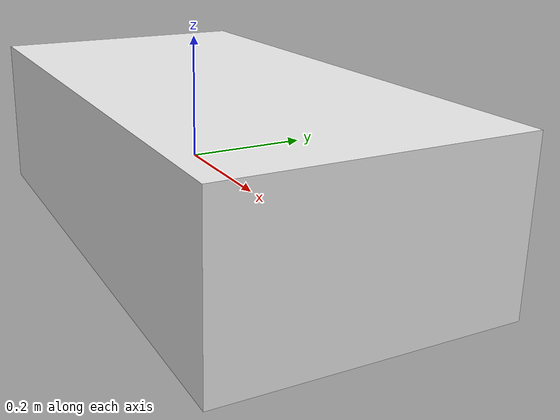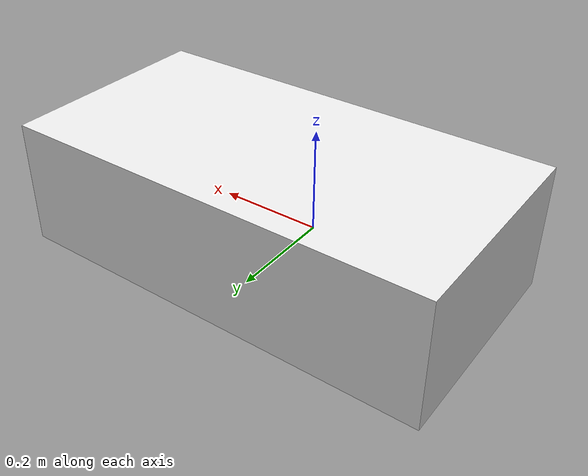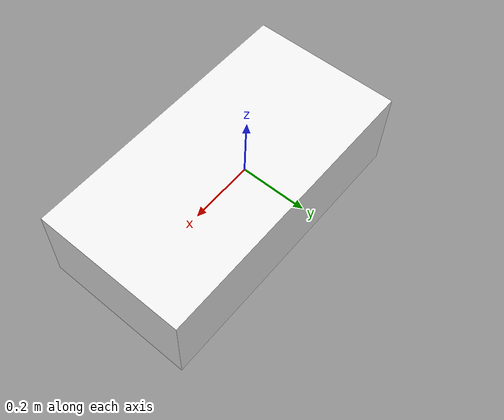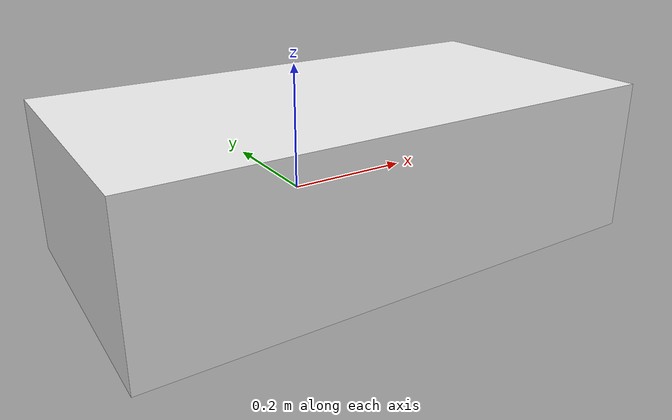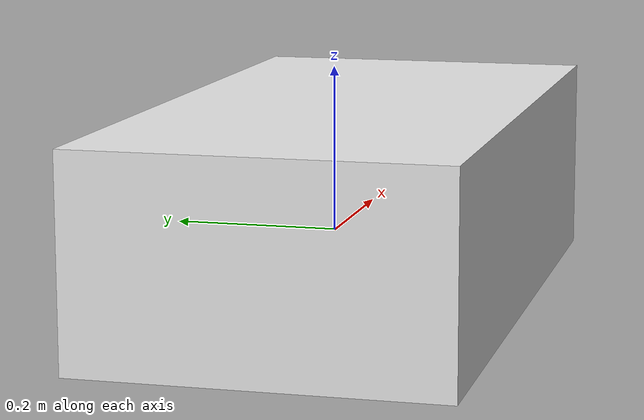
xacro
<?xml version="1.0"?>
<robot xmlns:xacro="https://www.ros.org/wiki/xacro">
  <!-- This file contains the core robot description -->
  <!-- This includes the frame of the robot and the wheels -->
  <!-- The robot is a differential drive robot with two wheels and a caster wheel -->

  <xacro:include filename="materials.xacro"/>
  <xacro:include filename="dimensions.xacro"/>
  <xacro:include filename="inertia_macros.xacro"/>

  <!-- BASE LINK -->

  <link name="base_link"/>

  <!-- BASE FOOTPRINT -->

  <link name="base_footprint"/>

  <joint name="base_footprint_joint" type="fixed">
    <parent link="base_link"/>
    <child link="base_footprint"/>
    <origin xyz="0 0 0" rpy="0 0 0"/>
  </joint>

  <!-- CHASSIS LINK -->

  <joint name="chassis_joint" type="fixed">
    <parent link="base_link"/>
    <child link="chassis_link"/>
    <origin xyz="${main_wheel_x_offset} 0 0" rpy="0 0 0"/>
  </joint>

  <link name="chassis_link">
    <visual>
      <origin xyz="${0 + (back_caster_x_offset / 4)} 0 ${back_caster_radius / 4}" rpy="0 0 0"/>
      <geometry>
        <box size="${base_length} ${base_width} ${base_height}"/>
      </geometry>

      <material name="white"/>
    </visual>

    <collision>
      <origin xyz="${0 + (back_caster_x_offset / 4)} 0 ${back_caster_radius / 4}" rpy="0 0 0"/>
      <geometry>
        <box size="${base_length} ${base_width} ${base_height}"/>
      </geometry>
    </collision>

    <xacro:inertial_box mass="50.0" x="${base_length}" y="${base_width}" z="${base_height}">
      <origin xyz="0 0 0" rpy="0 0 0"/>
    </xacro:inertial_box>
  </link>

  <gazebo reference="chassis_link">
    <material>Gazebo/White</material>
  </gazebo>
</robot>

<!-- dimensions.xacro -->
<robot xmlns:xacro="https://www.ros.org/wiki/xacro">
  <!-- This file contains the dimensions of the robot -->
  <!-- The dimensions are defined in meters -->

  <!-- Convert mm to meters -->
  <xacro:property name="mm_to_m" value="${0.001}"/>
  <xacro:property name="cm_to_m" value="${0.01}"/>

  <!-- Convert inches to meters -->
  <xacro:property name="in_to_m" value="${0.0254}"/>

  <!-- Base Chassis Dimensions -->
  <xacro:property name="base_length" value="${34 * in_to_m}"/>
  <xacro:property name="base_width" value="${17.5 * in_to_m}"/>
  <xacro:property name="base_height" value="${10 * in_to_m}"/>

  <!-- Wheel Dimensions / Location -->
  <xacro:property name="main_wheel_diameter" value="${33.02 * cm_to_m}"/>
  <xacro:property name="main_wheel_radius" value="${main_wheel_diameter / 2}"/>
  <xacro:property name="main_wheel_width" value="${48 * mm_to_m}"/>
  <xacro:property name="main_wheel_z_offset" value="${0.0}"/>
  <xacro:property name="main_wheel_y_offset" value="${28.575 * cm_to_m}"/>
  <xacro:property name="main_wheel_x_offset" value="${0.0}"/>

  <!-- Caster Dimensions / Location -->
  <xacro:property name="front_caster_diameter" value="${20.32 * cm_to_m}"/>
  <xacro:property name="front_caster_radius" value="${front_caster_diameter / 2}"/>
  <xacro:property name="front_caster_width" value="${16 * mm_to_m}"/>
  <xacro:property name="front_caster_z_offset" value="${(16.51 * cm_to_m) - ((10.16 / 2) * cm_to_m)}"/>
  <xacro:property name="front_caster_y_offset" value="${22.225 * cm_to_m}"/>
  <xacro:property name="front_caster_x_offset" value="${53.975 * cm_to_m}"/>

  <xacro:property name="back_caster_diameter" value="${15.24 * cm_to_m}"/>
  <xacro:property name="back_caster_radius" value="${back_caster_diameter / 2}"/>
  <xacro:property name="back_caster_width" value="${16 * mm_to_m}"/>
  <xacro:property name="back_caster_z_offset" value="${(16.51 * cm_to_m) - ((7.62 / 2) * cm_to_m)}"/>
  <xacro:property name="back_caster_y_offset" value="${26.9875 * cm_to_m}"/>
  <xacro:property name="back_caster_x_offset" value="${33.02 * cm_to_m}"/>

  <!-- Lidar Dimensions -->
  <xacro:property name="lidar_height" value="${71.7 * mm_to_m}"/>
  <xacro:property name="lidar_radius" value="${103.3 * mm_to_m / 2}"/>

  <!-- Assorted Offset Values -->
  <xacro:property name="base_x_offset" value="${(back_caster_x_offset / 4)}"/>
  <xacro:property name="base_z_offset" value="${back_caster_radius / 4}"/>
  <xacro:property name="lidar_x_offset" value="${(base_length / 2) - (lidar_radius / 2) + (base_x_offset / 2)}"/>
  <xacro:property name="lidar_z_offset" value="${(base_height / 2) + (lidar_height / 2) + base_z_offset}"/>
</robot>
